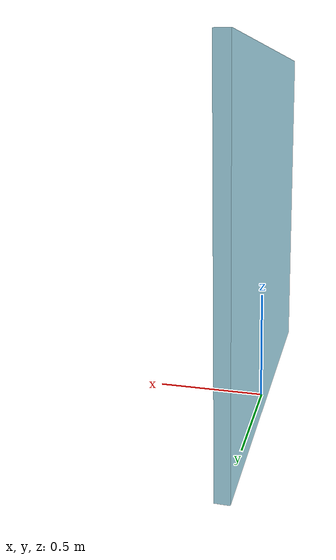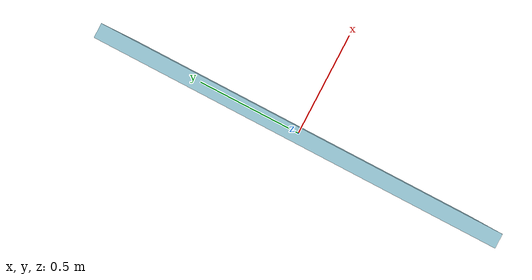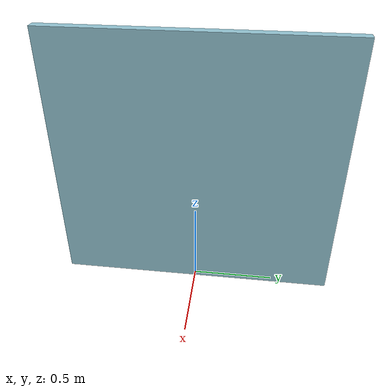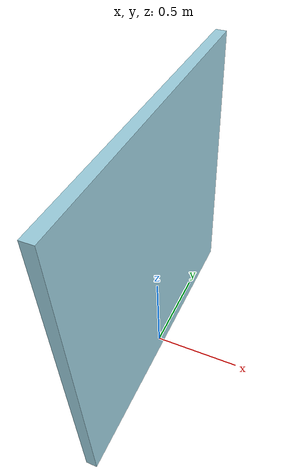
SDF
<?xml version="1.0"?>
<sdf version="1.9">
  <model name="privacy_curtain">
    <static>true</static>
    <!-- Thin panel 0.06 x 1.7 x 1.6 lifted 0.8 so the model origin sits on the
         floor. Near-opaque so it occludes both RGB and depth. -->
    <link name="link">
      <collision name="collision">
        <pose>0 0 0.8 0 0 0</pose>
        <geometry><box><size>0.06 1.7 1.6</size></box></geometry>
      </collision>
      <visual name="visual">
        <pose>0 0 0.8 0 0 0</pose>
        <geometry><box><size>0.06 1.7 1.6</size></box></geometry>
        <material>
          <ambient>0.62 0.82 0.88 0.95</ambient>
          <diffuse>0.62 0.82 0.88 0.95</diffuse>
        </material>
      </visual>
    </link>
  </model>
</sdf>
